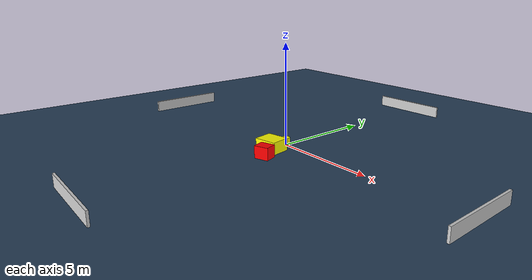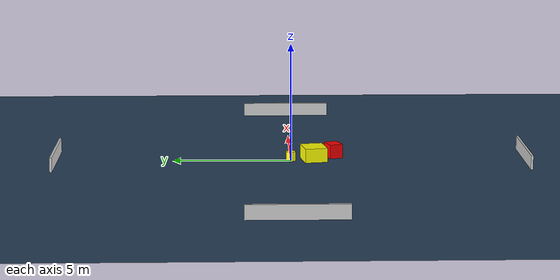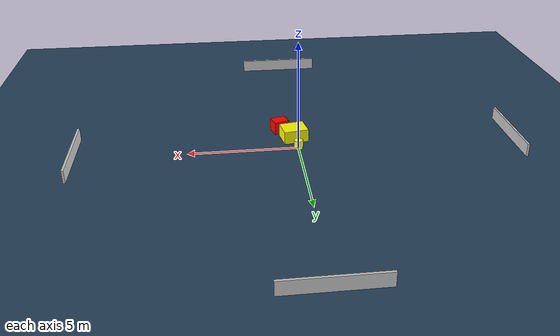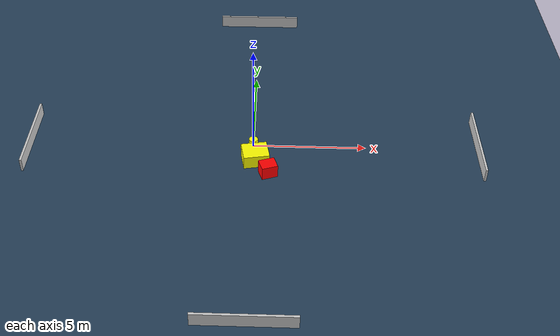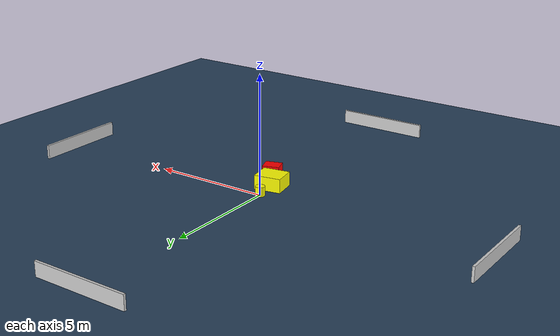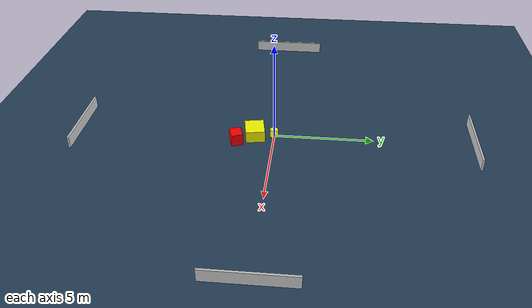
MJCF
<?xml version="1.0" ?>
<mujoco model="generated_environment">
  <option timestep="0.01" integrator="RK4" cone="elliptic"/>
  <default>
    <geom density="1"/>
  </default>
  <asset>
    <texture builtin="gradient" height="3072" name="skybox" rgb1="0.3 0.5 0.7" rgb2="0 0 0" type="skybox" width="512"/>
    <texture builtin="checker" height="300" name="groundplane" rgb1="0.2 0.3 0.4" rgb2="0.1 0.2 0.3" type="2d" width="300"/>
    <material name="groundplane" reflectance="0.2" texrepeat="5 5" texture="groundplane"/>
  </asset>
  <worldbody>
    <light dir="0 0 -1" directional="true" pos="0 0 1.5"/>
    <geom condim="3" friction="0.5 0.005 0.001" material="groundplane" name="floor" pos="0 0 0" size="0 0 0.05" type="plane"/>
    <body name="walls">
      <geom name="wall_1" condim="4" pos="-10.0 0.0 0.3" rgba="0.800000011920929 0.800000011920929 0.800000011920929 1.0" size="0.05 2.0 0.3" type="box"/>
      <geom name="wall_2" condim="4" pos="10.0 0.0 0.3" rgba="0.800000011920929 0.800000011920929 0.800000011920929 1.0" size="0.05 2.0 0.3" type="box"/>
      <geom name="wall_3" condim="4" pos="0.0 -10.0 0.3" rgba="0.800000011920929 0.800000011920929 0.800000011920929 1.0" size="2.0 0.05 0.3" type="box"/>
      <geom name="wall_4" condim="4" pos="0.0 10.0 0.3" rgba="0.800000011920929 0.800000011920929 0.800000011920929 1.0" size="2.0 0.05 0.3" type="box"/>
    </body>
    <body name="robot">
      <joint name="joint_x" type="slide" pos="0 0 0" axis="1 0 0"/>
      <joint name="joint_y" type="slide" pos="0 0 0" axis="0 1 0"/>
      <geom name="robot" type="cylinder" pos="0.0 0.0 0.2" size="0.2 0.2 0.0" mass="5.0" friction="1.0 0.005 0.0001" condim="4" rgba="1.0 1.0 0.0 1.0"/>
    </body>
    <body name="obstacle_1_movable">
      <geom name="obstacle_1_movable" condim="4" pos="0.10645211302500673 -0.9782650537583716 0.3" euler="0 0 190.09256980803323" friction="0.0 0.005 0.001" rgba="1.0 1.0 0.0 1.0" size="0.5683888716752151 0.47933876242133544 0.3" type="box" mass="0.1"/>
      <joint type="free"/>
    </body>
    <body name="obstacle_2_static">
      <geom name="obstacle_2_static" condim="4" pos="0.6848802069271162 -1.846537589135159 0.3" euler="0 0 108.88400677092295" friction="0.0 0.005 0.001" rgba="1.0 0.0 0.0 1.0" size="0.29356230078828505 0.35465123633264245 0.3" type="box"/>
    </body>
  </worldbody>
  <actuator>
    <motor name="actuator_x" joint="joint_x" gear="1" ctrlrange="-1 1"/>
    <motor name="actuator_y" joint="joint_y" gear="1" ctrlrange="-1 1"/>
  </actuator>
</mujoco>
